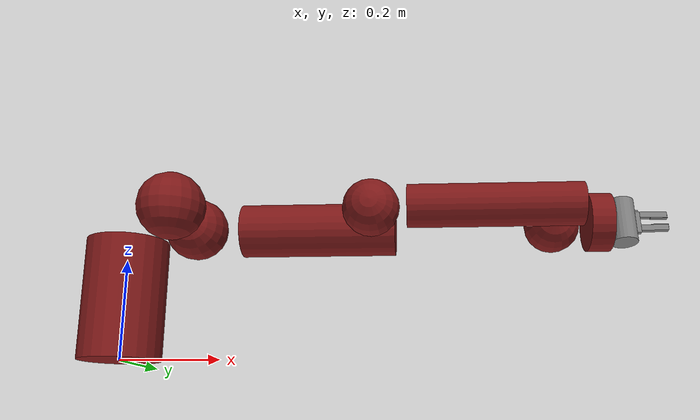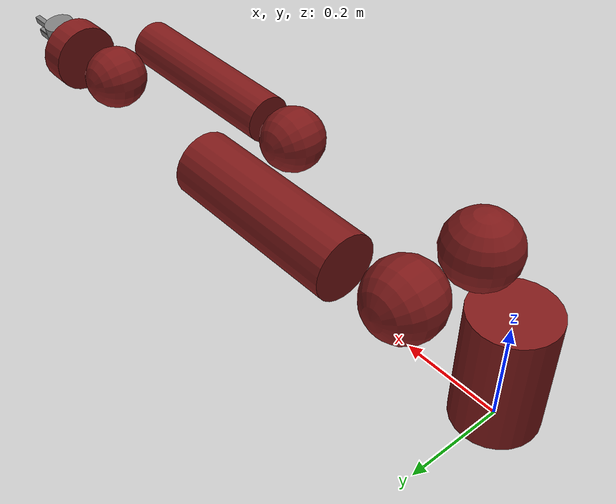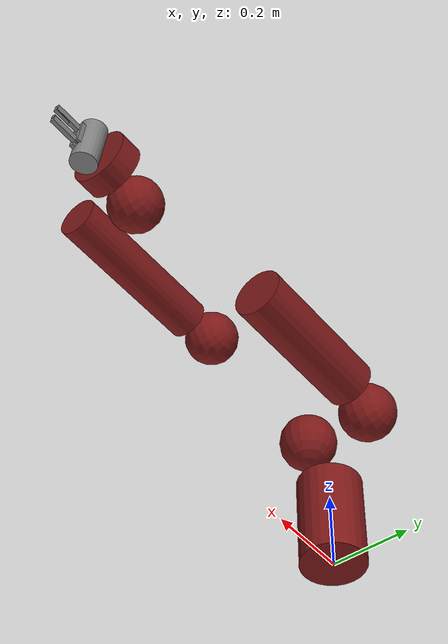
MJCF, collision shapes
<mujoco model="sawyer_no_base">
    <compiler angle="radian" />
    <size njmax="500" nconmax="100" />
    <asset>
        <mesh name="base" file="sawyer_description/meshes/sawyer_pv/base.stl" />
        <mesh name="l0" file="sawyer_description/meshes/sawyer_mp3/l0.stl" />
        <mesh name="l1" file="sawyer_description/meshes/sawyer_mp3/l1.stl" />
        <mesh name="l2" file="sawyer_description/meshes/sawyer_pv/l2.stl" />
        <mesh name="l3" file="sawyer_description/meshes/sawyer_pv/l3.stl" />
        <mesh name="l4" file="sawyer_description/meshes/sawyer_pv/l4.stl" />
        <mesh name="l5" file="sawyer_description/meshes/sawyer_pv/l5.STL" />
        <mesh name="l6" file="sawyer_description/meshes/sawyer_mp1/l6.STL" />
        <mesh name="electric_gripper_base" file="rethink_ee_description/meshes/electric_gripper/electric_gripper_base.STL" />
        <mesh name="standard_narrow" file="rethink_ee_description/meshes/electric_gripper/fingers/standard_narrow.STL" />
        <mesh name="half_round_tip" file="rethink_ee_description/meshes/electric_gripper/fingers/half_round_tip.STL" />
    </asset>
    <worldbody>
        <body name="right_arm_base_link" pos="0 0 0">
            <inertial pos="-0.0006241 -2.8025e-05 0.065404" quat="-0.209285 0.674441 0.227335 0.670558" mass="2.0687" diaginertia="0.00740351 0.00681776 0.00672942" />
            <geom type="mesh" contype="0" conaffinity="0" group="1" rgba="0.5 0.1 0.1 1" mesh="base" />
            <geom size="0.08 0.12" pos="0 0 0.12" type="cylinder" rgba="0.5 0.1 0.1 1" />
            <body name="right_l0" pos="0 0 0.08">
                <inertial pos="0.024366 0.010969 0.14363" quat="0.894823 0.00899958 -0.170275 0.412573" mass="5.3213" diaginertia="0.0651588 0.0510944 0.0186218" />
                <joint name="right_j0" pos="0 0 0" axis="0 0 1" limited="true" range="-3.0503 3.0503" />
                <geom type="mesh" contype="0" conaffinity="0" group="1" rgba="0.5 0.1 0.1 1" mesh="l0" />
                <geom size="0.07" pos="0.081 0 0.237" rgba="0.5 0.1 0.1 1" />
                <body name="right_l1" pos="0.081 0.05 0.237" quat="0.5 -0.5 0.5 0.5">
                    <inertial pos="-0.0030849 -0.026811 0.092521" quat="0.424888 0.891987 0.132364 -0.0794296" mass="4.505" diaginertia="0.0224339 0.0221624 0.0097097" />
                    <joint name="right_j1" pos="0 0 0" axis="0 0 1" limited="true" range="-3.8183 2.2824" />
                    <geom type="mesh" contype="0" conaffinity="0" group="1" rgba="0.5 0.1 0.1 1" mesh="l1" />
                    <geom size="0.07" pos="0 0 0.1225" rgba="0.5 0.1 0.1 1" />
                    <body name="right_l2" pos="0 -0.14 0.1425" quat="0.707107 0.707107 0 0">
                        <inertial pos="-0.00016232 -0.015346 0.13445" quat="0.707249 -0.0541564 0.0533441 0.702866" mass="1.7251" diaginertia="0.0255023 0.025176 0.00285946" />
                        <joint name="right_j2" pos="0 0 0" axis="0 0 1" limited="true" range="-3.0514 3.0514" />
                        <geom type="mesh" contype="0" conaffinity="0" group="1" rgba="0.5 0.1 0.1 1" mesh="l2" />
                        <geom size="0.06 0.175" pos="0 0 0.14" type="cylinder" rgba="0.5 0.1 0.1 1" />
                        <body name="right_l3" pos="0 -0.042 0.26" quat="0.707107 -0.707107 0 0">
                            <inertial pos="-0.0046678 -0.028394 -0.083127" quat="0.894367 0.380888 -0.106513 0.209016" mass="2.4743" diaginertia="0.0100572 0.00959393 0.00350313" />
                            <joint name="right_j3" pos="0 0 0" axis="0 0 1" limited="true" range="-3.0514 3.0514" />
                            <geom type="mesh" contype="0" conaffinity="0" group="1" rgba="0.5 0.1 0.1 1" mesh="l3" />
                            <geom size="0.06" pos="0 -0.01 -0.12" rgba="0.5 0.1 0.1 1" />
                            <body name="right_l4" pos="0 -0.125 -0.1265" quat="0.707107 0.707107 0 0">
                                <inertial pos="-0.0027794 0.0076558 0.13273" quat="0.801274 0.0333339 -0.0340185 0.596399" mass="1.0433" diaginertia="0.013057 0.0129029 0.00113257" />
                                <joint name="right_j4" pos="0 0 0" axis="0 0 1" limited="true" range="-2.9842 2.9842" />
                                <geom type="mesh" contype="0" conaffinity="0" group="1" rgba="0.5 0.1 0.1 1" mesh="l4" />
                                <geom size="0.045 0.18" pos="0 0 0.14" type="cylinder" rgba="0.5 0.1 0.1 1" />
                                <body name="right_l5" pos="0 0.031 0.275" quat="0.707107 -0.707107 0 0">
                                    <inertial pos="0.0062067 -0.024291 0.075564" quat="0.405457 0.912624 0.0521713 0.000995062" mass="1.5343" diaginertia="0.00461663 0.0041769 0.00178717" />
                                    <joint name="right_j5" pos="0 0 0" axis="0 0 1" limited="true" range="-2.9842 2.9842" />
                                    <geom type="mesh" contype="0" conaffinity="0" group="1" rgba="0.5 0.1 0.1 1" mesh="l5" />
                                    <geom size="0.06" pos="0.01 0 0.09" rgba="0.5 0.1 0.1 1" />
                                    <body name="right_l6" pos="0 -0.11 0.1053" quat="0.0616248 0.06163 -0.704416 0.704416">
                                        <inertial pos="-8.0726e-06 0.0085838 -0.0049566" quat="0.479044 0.515636 -0.513069 0.491322" mass="0.3292" diaginertia="0.000360258 0.000311068 0.000214974" />
                                        <joint name="right_j6" pos="0 0 0" axis="0 0 1" limited="true" range="-4.7104 4.7104" />
                                        <geom type="mesh" contype="0" conaffinity="0" group="1" rgba="0.5 0.1 0.1 1" mesh="l6" />
                                        <geom size="0.065 0.025" pos="0 0 -0.005" type="cylinder" rgba="0.5 0.1 0.1 1" />
                                        <body name="right_hand" pos="0 0 0.0245" quat="0.707105 0 0 0.707108">
                                            <inertial pos="1e-08 1e-08 1e-08" quat="0.820473 0.339851 -0.17592 0.424708" mass="1e-08" diaginertia="1e-08 1e-08 1e-08" />
                                            <geom size="1e-08 5e-09" type="cylinder" />
                                            <body name="right_gripper_base" pos="0 0 0.025">
                                                <inertial pos="0 0 0" quat="-0.5 0.5 0.5 0.5" mass="0.3" diaginertia="3e-08 2e-08 2e-08" />
                                                <geom quat="0 0 0.707107 0.707107" type="mesh" contype="0" conaffinity="0" group="1" mesh="electric_gripper_base" />
                                                <geom size="0.029 0.05" quat="0 0 0.707107 0.707107" type="cylinder" />
                                                <body name="right_gripper" pos="0 0 0.095">
                                                    <inertial pos="0 0 0" mass="0.0001" diaginertia="0 0 0" />
                                                </body>
                                                <body name="r_gripper_l_finger" pos="0 -0.0015 0.02">
                                                    <inertial pos="0 0 0" quat="0 0 0 -1" mass="0.02" diaginertia="0.01 0.01 0.01" />
                                                    <joint name="r_gripper_l_finger_joint" pos="0 0 0" axis="0 1 0" type="slide" limited="true" range="0 0.020833" />
                                                    <geom quat="0 0 0 -1" type="mesh" contype="0" conaffinity="0" group="1" mesh="standard_narrow" />
                                                    <geom size="0.005 0.00675 0.0375" pos="0 0.01725 0.04" quat="0 0 0 -1" type="box" />
                                                    <geom size="0.005 0.025 0.0085" pos="-0.005 -0.003 0.0083" quat="0 0 0 -1" type="box" />
                                                    <body name="r_gripper_l_finger_tip" pos="0 0.01725 0.075">
                                                        <inertial pos="0 0 0" quat="0 0 0 1" mass="0.01" diaginertia="0.01 0.01 0.01" />
                                                        <geom quat="0 0 0 1" type="mesh" contype="0" conaffinity="0" group="1" mesh="half_round_tip" />
                                                        <geom size="0.004 0.004 0.0185" pos="0 -0.0045 -0.015" quat="0 0 0 1" type="box" />
                                                    </body>
                                                </body>
                                                <body name="r_gripper_r_finger" pos="0 0.0015 0.02">
                                                    <inertial pos="0 0 0" mass="0.02" diaginertia="0.01 0.01 0.01" />
                                                    <joint name="r_gripper_r_finger_joint" pos="0 0 0" axis="0 1 0" type="slide" limited="true" range="-0.020833 0" />
                                                    <geom type="mesh" contype="0" conaffinity="0" group="1" mesh="standard_narrow" />
                                                    <geom size="0.005 0.00675 0.0375" pos="0 -0.01725 0.04" type="box" />
                                                    <geom size="0.005 0.025 0.0085" pos="0.005 0.003 0.0083" type="box" />
                                                    <body name="r_gripper_r_finger_tip" pos="0 -0.01725 0.075">
                                                        <inertial pos="0 0 0" mass="0.01" diaginertia="0.01 0.01 0.01" />
                                                        <geom type="mesh" contype="0" conaffinity="0" group="1" mesh="half_round_tip" />
                                                        <geom size="0.004 0.004 0.0185" pos="0 0.0045 -0.015" type="box" />
                                                    </body>
                                                </body>
                                            </body>
                                        </body>
                                    </body>
                                </body>
                            </body>
                        </body>
                    </body>
                </body>
            </body>
        </body>
    </worldbody>
</mujoco>
